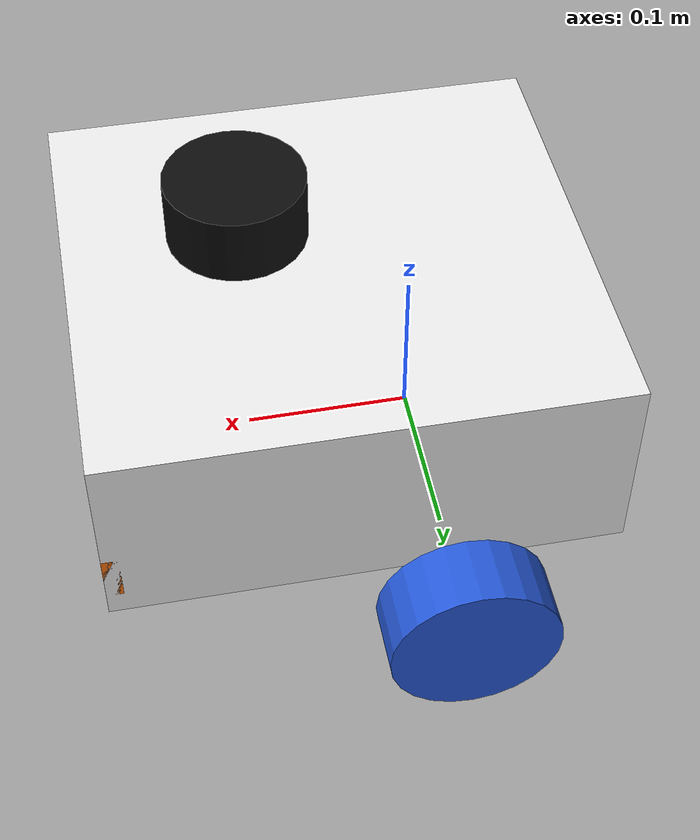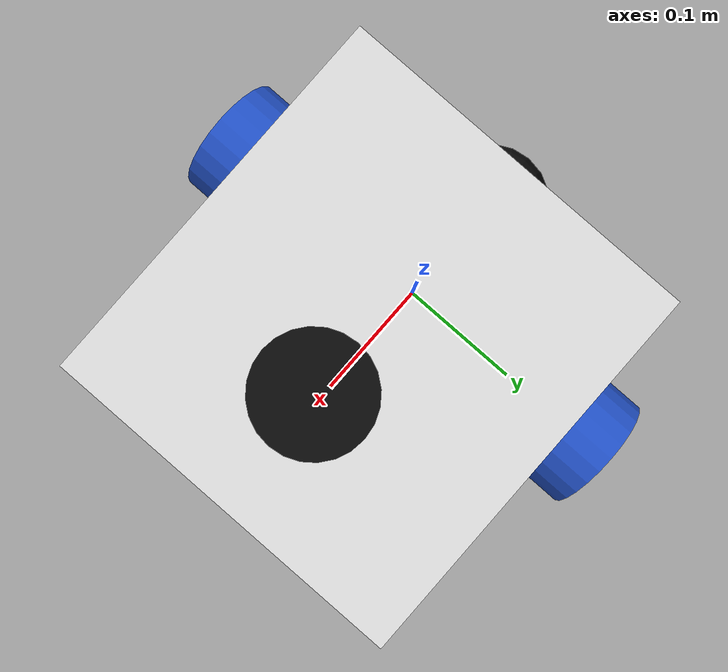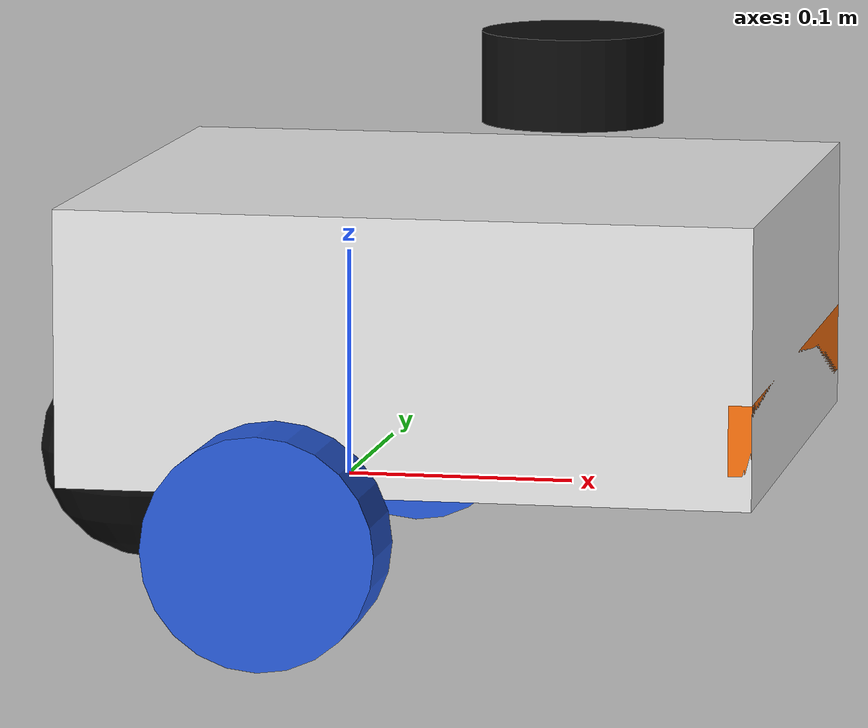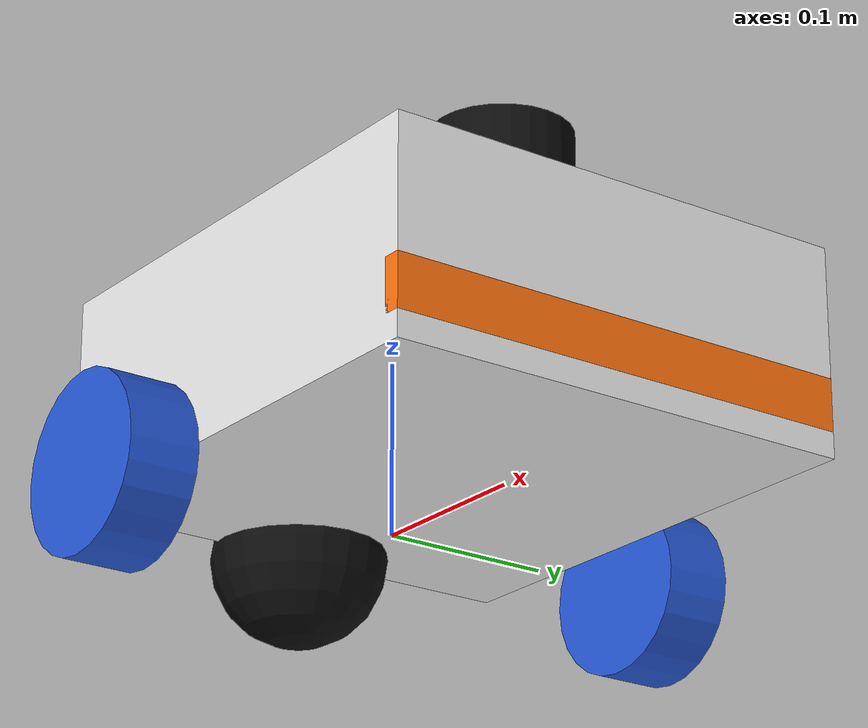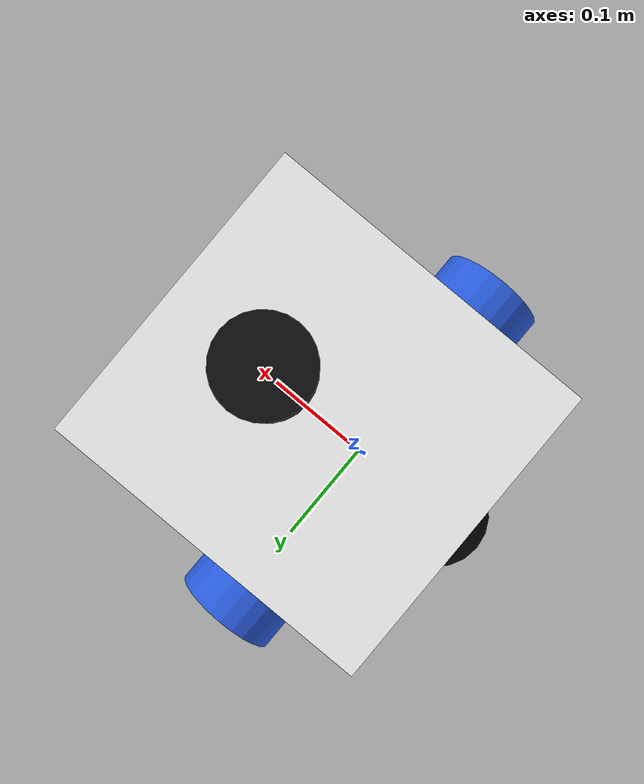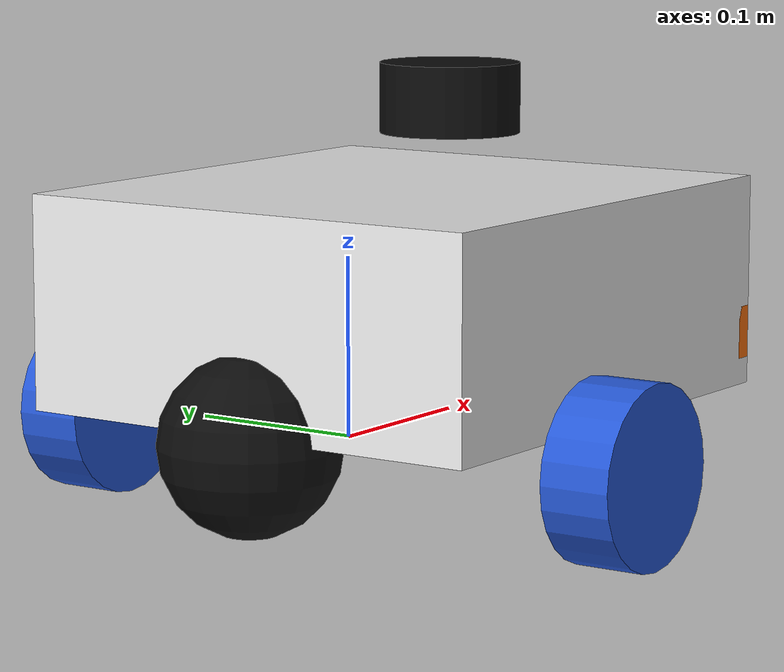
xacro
<?xml version="1.0"?>
<robot xmlns:xacro="http://www.ros.org/wiki/xacro">

  <xacro:include filename="inertial_macros.xacro" />

  <!-- ── MATERIALS ─────────────────────────────────────────────────────── -->
  <material name="white">  <color rgba="0.92 0.92 0.92 1"/></material>
  <material name="orange"> <color rgba="1.0  0.45 0.05 1"/></material>
  <material name="blue">   <color rgba="0.15 0.35 0.85 1"/></material>
  <material name="black">  <color rgba="0.05 0.05 0.05 1"/></material>
  <material name="red">    <color rgba="0.85 0.1  0.1  1"/></material>
  <material name="yellow"> <color rgba="1.0  0.85 0.0  1"/></material>

  <!-- ── BASE LINK ─────────────────────────────────────────────────────── -->
  <link name="base_link"/>

  <!-- ── CHASSIS ───────────────────────────────────────────────────────── -->
  <joint name="chassis_joint" type="fixed">
    <parent link="base_link"/>
    <child  link="chassis"/>
    <origin xyz="-0.1 0 0"/>
  </joint>

  <link name="chassis">
    <visual>
      <origin xyz="0.15 0 0.075" rpy="0 0 0"/>
      <geometry><box size="0.30 0.28 0.12"/></geometry>
      <material name="white"/>
    </visual>
    <collision>
      <origin xyz="0.15 0 0.075" rpy="0 0 0"/>
      <geometry><box size="0.30 0.28 0.12"/></geometry>
    </collision>
    <xacro:inertial_box mass="0.6" x="0.30" y="0.28" z="0.12">
      <origin xyz="0.15 0 0.075" rpy="0 0 0"/>
    </xacro:inertial_box>
  </link>
  <gazebo reference="chassis">
    <material>Gazebo/White</material>
  </gazebo>

  <!-- ── IMPROVEMENT: coloured front bumper strip ──────────────────────── -->
  <joint name="bumper_joint" type="fixed">
    <parent link="chassis"/>
    <child  link="bumper"/>
    <origin xyz="0.295 0 0.045" rpy="0 0 0"/>
  </joint>
  <link name="bumper">
    <visual>
      <geometry><box size="0.01 0.28 0.03"/></geometry>
      <material name="orange"/>
    </visual>
    <collision>
      <geometry><box size="0.01 0.28 0.03"/></geometry>
    </collision>
    <xacro:inertial_box mass="0.02" x="0.01" y="0.28" z="0.03">
      <origin xyz="0 0 0" rpy="0 0 0"/>
    </xacro:inertial_box>
  </link>
  <gazebo reference="bumper">
    <material>Gazebo/Orange</material>
  </gazebo>

  <!-- ── LEFT WHEEL ────────────────────────────────────────────────────── -->
  <joint name="left_wheel_joint" type="continuous">
    <parent link="base_link"/>
    <child  link="left_wheel"/>
    <origin xyz="0 0.175 0" rpy="-${pi/2} 0 0"/>
    <axis xyz="0 0 1"/>
  </joint>
  <link name="left_wheel">
    <visual>
      <geometry><cylinder length="0.04" radius="0.05"/></geometry>
      <material name="blue"/>
    </visual>
    <collision>
      <geometry><cylinder length="0.04" radius="0.05"/></geometry>
    </collision>
    <xacro:inertial_cylinder mass="0.1" length="0.04" radius="0.05">
      <origin xyz="0 0 0" rpy="0 0 0"/>
    </xacro:inertial_cylinder>
  </link>
  <gazebo reference="left_wheel">
    <material>Gazebo/Blue</material>
    <!-- IMPROVEMENT: realistic rubber friction -->
    <mu1>0.9</mu1>
    <mu2>0.9</mu2>
  </gazebo>

  <!-- ── RIGHT WHEEL ───────────────────────────────────────────────────── -->
  <joint name="right_wheel_joint" type="continuous">
    <parent link="base_link"/>
    <child  link="right_wheel"/>
    <origin xyz="0 -0.175 0" rpy="${pi/2} 0 0"/>
    <axis xyz="0 0 -1"/>
  </joint>
  <link name="right_wheel">
    <visual>
      <geometry><cylinder length="0.04" radius="0.05"/></geometry>
      <material name="blue"/>
    </visual>
    <collision>
      <geometry><cylinder length="0.04" radius="0.05"/></geometry>
    </collision>
    <xacro:inertial_cylinder mass="0.1" length="0.04" radius="0.05">
      <origin xyz="0 0 0" rpy="0 0 0"/>
    </xacro:inertial_cylinder>
  </link>
  <gazebo reference="right_wheel">
    <material>Gazebo/Blue</material>
    <mu1>0.9</mu1>
    <mu2>0.9</mu2>
  </gazebo>

  <!-- ── CASTER WHEEL ──────────────────────────────────────────────────── -->
  <joint name="caster_wheel_joint" type="fixed">
    <parent link="chassis"/>
    <child  link="caster_wheel"/>
    <!-- IMPROVEMENT: moved caster further back for better stability -->
    <origin xyz="0.01 0 0.01" rpy="0 0 0"/>
  </joint>
  <link name="caster_wheel">
    <visual>
      <geometry><sphere radius="0.05"/></geometry>
      <material name="black"/>
    </visual>
    <collision>
      <geometry><sphere radius="0.05"/></geometry>
    </collision>
    <xacro:inertial_sphere mass="0.1" radius="0.05">
      <origin xyz="0 0 0" rpy="0 0 0"/>
    </xacro:inertial_sphere>
  </link>
  <gazebo reference="caster_wheel">
    <material>Gazebo/Black</material>
    <!-- Near-zero friction so it rolls freely in all directions -->
    <mu1>0.001</mu1>
    <mu2>0.001</mu2>
  </gazebo>

  <!-- ── LIDAR MOUNT ────────────────────────────────────────────────────── -->
  <joint name="laser_joint" type="fixed">
    <parent link="base_link"/>
    <child  link="laser_frame"/>
    <!-- IMPROVEMENT: centred on base_link for accurate scan transforms -->
    <origin xyz="0.1 0 0.18" rpy="0 0 0"/>
  </joint>
  <link name="laser_frame">
    <visual>
      <geometry><cylinder radius="0.04" length="0.04"/></geometry>
      <material name="black"/>
    </visual>
    <collision>
      <geometry><cylinder radius="0.04" length="0.04"/></geometry>
    </collision>
    <inertial>
      <mass value="0.08"/>
      <inertia ixx="0.001" ixy="0" ixz="0"
               iyy="0.001" iyz="0" izz="0.001"/>
    </inertial>
  </link>

</robot>
